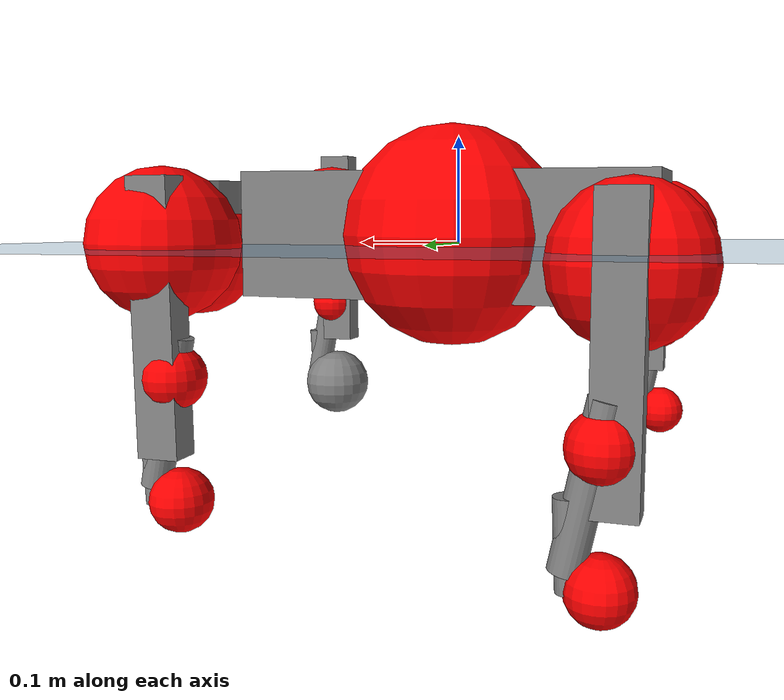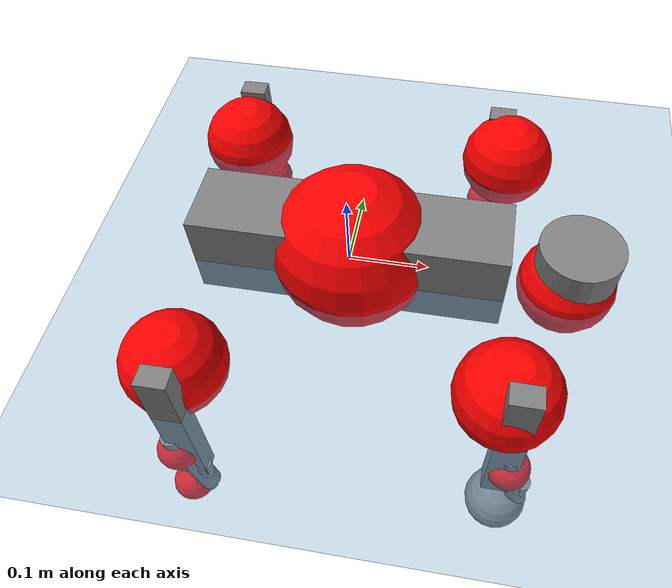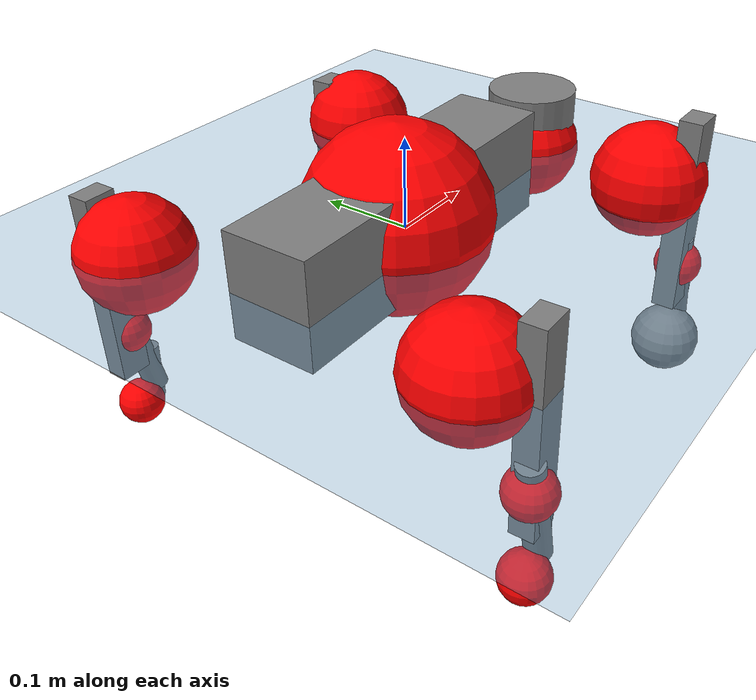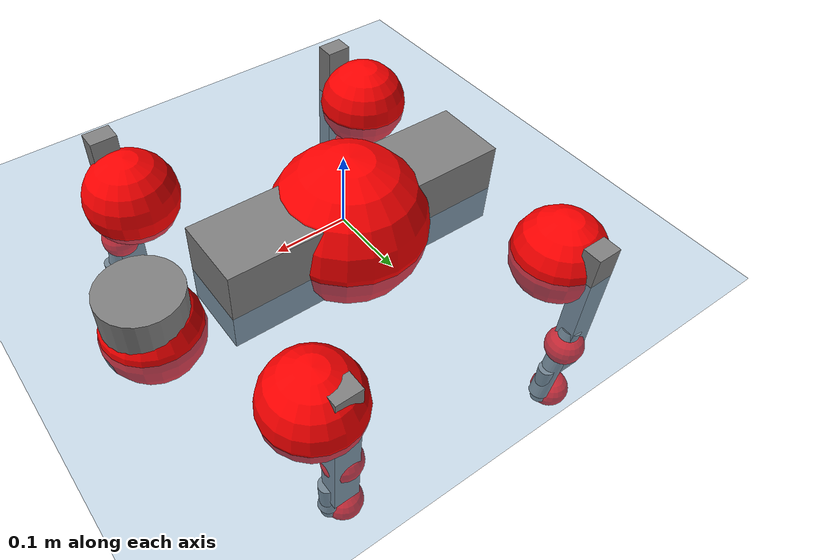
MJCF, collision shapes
<mujoco model="go2">
  <compiler angle="radian" assetdir="assets" balanceinertia="true" inertiafromgeom="false"/>

  <option timestep="0.005" density="1.2" viscosity="2e-05"/>

  <size nkey="1"/>

  <visual>
    <quality shadowsize="8192"/>
    <map shadowclip="0.5"/>
  </visual>

  <default>
    <default class="/">
      <geom contype="0" conaffinity="0" group="1" solref="-1000 -80"/>
      <site size="0.01 0.005 0.005" group="5"/>
      <general forcelimited="true" biastype="affine" gainprm="20" biasprm="0 -20 -0.5"/>
      <default class="go2">
        <joint armature="0.01" damping="0.01" frictionloss="0.2"/>
        <geom condim="1" margin="0.001"/>
        <default class="visual">
          <geom type="mesh" group="2"/>
        </default>
        <default class="collision">
          <geom group="3"/>
          <default class="foot">
            <geom size="0.022 0 0" condim="6" priority="1" friction="0.8 0.02 0.01" solimp="0.015 1 0.022"/>
          </default>
        </default>
        <default class="reward_collision_sphere">
          <geom group="5" rgba="1 0 0 1"/>
        </default>
      </default>
    </default>
  </default>

  <asset>
    <texture type="skybox" colorspace="auto" name="//unnamed_texture_0" builtin="gradient" rgb1="0.95 0.95 0.95" rgb2="0.95 0.95 0.95" width="100" height="600"/>
    <texture type="2d" colorspace="auto" name="texplane" builtin="checker" rgb1="0.345 0.575 0.748" rgb2="0.345 0.575 0.748" markrgb="1 1 1" width="512" height="512"/>
    <material name="MatPlane" class="/" texture="texplane" texuniform="true" texrepeat="2 2" specular="0.9"/>
    <material name="metal" class="/" rgba="0.9 0.95 0.95 1"/>
    <material name="black" class="/" rgba="0 0 0 1"/>
    <material name="white" class="/"/>
    <material name="gray" class="/" rgba="0.671705 0.692426 0.77427 1"/>
    <mesh name="base_0" class="/" file="base_0.obj"/>
    <mesh name="base_1" class="/" file="base_1.obj"/>
    <mesh name="base_2" class="/" file="base_2.obj"/>
    <mesh name="base_3" class="/" file="base_3.obj"/>
    <mesh name="base_4" class="/" file="base_4.obj"/>
    <mesh name="hip_0" class="/" file="hip_0.obj"/>
    <mesh name="hip_1" class="/" file="hip_1.obj"/>
    <mesh name="thigh_0" class="/" file="thigh_0.obj"/>
    <mesh name="thigh_1" class="/" file="thigh_1.obj"/>
    <mesh name="thigh_mirror_0" class="/" file="thigh_mirror_0.obj"/>
    <mesh name="thigh_mirror_1" class="/" file="thigh_mirror_1.obj"/>
    <mesh name="calf_0" class="/" file="calf_0.obj"/>
    <mesh name="calf_1" class="/" file="calf_1.obj"/>
    <mesh name="calf_mirror_0" class="/" file="calf_mirror_0.obj"/>
    <mesh name="calf_mirror_1" class="/" file="calf_mirror_1.obj"/>
    <mesh name="foot" class="/" file="foot.obj"/>
  </asset>

  <worldbody>
    <geom name="floor" class="/" size="100 100 0.125" type="plane" group="0" material="MatPlane"/>
    <light name="toplight_shadow" class="/" pos="0 0 5" dir="0.0990148 0.0990148 -0.990148" type="directional" ambient="0.04 0.04 0.04" diffuse="0.55 0.55 0.55" specular="0.12 0.12 0.12"/>
    <light name="toplight_fill" class="/" pos="0 0 5" dir="0.0990148 0.0990148 -0.990148" type="directional" castshadow="false" ambient="0.04 0.04 0.04" diffuse="0.3 0.3 0.3" specular="0.08 0.08 0.08"/>
    <body name="trunk" childclass="go2" pos="0.00246074 0.0125874 0.00805895" quat="0.99998 -0.00547547 -0.00302138 -0.000943452">
      <inertial pos="0.0318691 0.0175468 -0.0155045" quat="0.0525928 0.708603 -0.0176148 0.703425" mass="7.90379" diaginertia="0.142526 1.58697 0.000561475"/>
      <joint name="//unnamed_joint_0" type="free" armature="0" damping="0" frictionloss="0"/>
      <geom name="//unnamed_geom_1" class="visual" material="black" mesh="base_0"/>
      <geom name="//unnamed_geom_2" class="visual" material="black" mesh="base_1"/>
      <geom name="//unnamed_geom_3" class="visual" material="black" mesh="base_2"/>
      <geom name="//unnamed_geom_4" class="visual" material="white" mesh="base_3"/>
      <geom name="//unnamed_geom_5" class="visual" material="gray" mesh="base_4"/>
      <geom name="trunk_1" class="collision" size="0.196271 0.0487807 0.0594759" type="box"/>
      <geom name="trunk_2" class="collision" size="0.0521719 0.0469547" pos="0.278991 0 0.00470655" type="cylinder"/>
      <geom name="trunk_3" class="collision" size="0.0490416" pos="0.286822 0 -0.0282393"/>
      <geom name="//unnamed_geom_9" class="reward_collision_sphere" size="0.104344"/>
      <geom name="//unnamed_geom_10" class="reward_collision_sphere" size="0.0626062" pos="0.274096 0 -0.0211795"/>
      <site name="imu" pos="-0.0017281 -0.0188037 0.00121668" size="0.0104344"/>
      <camera name="track" pos="0 -3.36148 0" quat="0.707107 0.707107 0 0" mode="trackcom"/>
      <camera name="ego_camera" pos="0.305421 0 0.0211795" quat="-0.5 -0.5 0.5 0.5"/>
      <body name="FL_hip" pos="0.184922 0.0770904 -0.00429202" quat="0.999999 0.00159697 -0.000376643 0.00043906">
        <inertial pos="-0.00499765 0.0180493 -0.00214075" quat="0.540634 0.439459 0.549945 0.460599" mass="0.681978" diaginertia="0.000765787 0.00826553 1.06283e-05"/>
        <joint name="FL_hip_joint" pos="0 0 0" axis="0.998618 -0.0522577 0.00550032" range="-0.829963 1.16447" armature="0.0131853" damping="0" frictionloss="0.230118"/>
        <geom name="//unnamed_geom_11" class="visual" material="metal" mesh="hip_0"/>
        <geom name="//unnamed_geom_12" class="visual" material="gray" mesh="hip_1"/>
        <geom name="//unnamed_geom_13" class="collision" size="0.0479981 0.0208687" pos="0 0.134459 0" quat="0.707107 0.707107 0 0" type="cylinder"/>
        <geom name="//unnamed_geom_14" class="reward_collision_sphere" size="0.0626062" pos="0 0.117652 0"/>
        <body name="FL_thigh" pos="-0.0146106 0.149641 -0.00764775" quat="0.99996 -0.00615054 0.00535098 0.00379804">
          <inertial pos="-0.00108105 -0.0555009 -0.00945202" quat="0.812407 0.0652784 -0.0485549 0.577388" mass="1.10182" diaginertia="0.00623216 0.0597079 1.98065e-05"/>
          <joint name="FL_thigh_joint" pos="0 0 0" axis="0.0647624 0.997901 -0.000394153" range="-1.31478 3.8217" armature="0.000939981" damping="0" frictionloss="0.32574"/>
          <geom name="//unnamed_geom_15" class="visual" material="metal" mesh="thigh_0"/>
          <geom name="//unnamed_geom_16" class="visual" material="gray" mesh="thigh_1"/>
          <geom name="//unnamed_geom_17" class="collision" size="0.111126 0.0127821 0.0177384" pos="0 0 -0.0501248" quat="0.707107 0 0.707107 0" type="box"/>
          <body name="FL_calf" pos="-0.00643465 -0.00647809 -0.0981815" quat="0.999998 8.43942e-05 0.000470443 0.00194744">
            <inertial pos="0.0219268 0.0110274 -0.0521378" quat="0.698898 0.0199268 0.0317088 0.71424" mass="0.282117" diaginertia="0.00153015 0.0179377 1.49518e-06"/>
            <joint name="FL_calf_joint" pos="0 0 0" axis="-0.0255007 0.999658 -0.00571656" range="-3.08461 -1.12328" armature="0.0167886" damping="0.0878254" frictionloss="0.121953"/>
            <geom name="//unnamed_geom_18" class="visual" material="gray" mesh="calf_0"/>
            <geom name="//unnamed_geom_19" class="visual" material="black" mesh="calf_1"/>
            <geom name="FL_calf0" class="collision" size="0.0125212 0.0626062" pos="0.00783132 0 -0.0282393" quat="0.994493 0 -0.104807 0" type="cylinder"/>
            <geom name="//unnamed_geom_21" class="collision" size="0.0114778 0.0339117" pos="0.0195783 0 -0.069657" quat="0.999688 0 0.0249974 0" type="cylinder"/>
            <geom name="//unnamed_geom_22" class="visual" pos="0 0 -0.10025" quat="1 0 0 0" material="black" mesh="foot"/>
            <geom name="FL_foot" class="foot" size="0.0239474" pos="-0.00195783 0 -0.10025"/>
            <geom name="//unnamed_geom_24" class="reward_collision_sphere" size="0.0260859"/>
            <geom name="//unnamed_geom_25" class="reward_collision_sphere" size="0.0260859" pos="-0.00195783 0 -0.10025"/>
            <site name="FL_foot" class="foot" pos="-0.00195783 0 -0.10025" size="0.0104344"/>
          </body>
        </body>
      </body>
      <body name="FR_hip" pos="0.20719 -0.0681679 0.0106454" quat="0.999994 0.000543061 0.00331184 0.000332022">
        <inertial pos="0.000128082 -0.0124386 0.00969127" quat="0.562706 0.462831 0.478409 0.490178" mass="0.828841" diaginertia="0.000894432 0.00799343 9.56816e-06"/>
        <joint name="FR_hip_joint" pos="0 0 0" axis="0.998421 -0.0451374 -0.0334445" stiffness="0.09175" range="-1.13899 0.742069" armature="0.0150785" damping="0" frictionloss="0.128623"/>
        <geom name="//unnamed_geom_26" class="visual" pos="0 1.05418e-08 4.52159e-07" quat="4.63268e-05 1 0 0" material="metal" mesh="hip_0"/>
        <geom name="//unnamed_geom_27" class="visual" pos="0 1.70895e-08 -1.11836e-06" quat="4.63268e-05 1 0 0" material="gray" mesh="hip_1"/>
        <geom name="//unnamed_geom_28" class="collision" size="0.0479981 0.0208687" pos="0 -0.134459 0" quat="0.707107 0.707107 0 0" type="cylinder"/>
        <geom name="//unnamed_geom_29" class="reward_collision_sphere" size="0.0626062" pos="0 -0.117652 0"/>
        <body name="FR_thigh" pos="0.00937075 -0.157631 0.0157077" quat="1 -3.00909e-05 1.12551e-05 -6.16222e-05">
          <inertial pos="-0.0141942 0.0497316 -0.0318817" quat="0.559598 -0.0374994 0.0458956 0.826643" mass="1.19593" diaginertia="0.00626655 0.0786968 2.04e-05"/>
          <joint name="FR_thigh_joint" pos="0 0 0" axis="-0.0170564 -0.999778 0.0123567" range="-3.43108 1.39909" armature="0.017962" damping="0" frictionloss="0.333684"/>
          <geom name="//unnamed_geom_30" class="visual" material="metal" mesh="thigh_mirror_0"/>
          <geom name="//unnamed_geom_31" class="visual" material="gray" mesh="thigh_mirror_1"/>
          <geom name="//unnamed_geom_32" class="collision" size="0.111126 0.0127821 0.0177384" pos="0 0 -0.0501248" quat="0.707107 0 0.707107 0" type="box"/>
          <body name="FR_calf" pos="0.0085852 -0.000985736 -0.116166" quat="0.999994 0.00164117 0.00262776 0.00119501">
            <inertial pos="0.0181827 -0.0113741 -0.0705528" quat="0.726939 0.0155531 -0.0251266 0.686066" mass="0.213932" diaginertia="0.00115838 0.0127462 1.09303e-06"/>
            <joint name="FR_calf_joint" pos="0 0 0" axis="-0.00568434 -0.999748 -0.0217275" range="0.669232 2.57336" armature="0.013071" damping="0.0970816" frictionloss="0.300901"/>
            <geom name="//unnamed_geom_33" class="visual" material="gray" mesh="calf_mirror_0"/>
            <geom name="//unnamed_geom_34" class="visual" material="black" mesh="calf_mirror_1"/>
            <geom name="FR_calf0" class="collision" size="0.0135647 0.0626062" pos="0.00978915 0 -0.0282393" quat="0.995004 0 -0.0998334 0" type="cylinder"/>
            <geom name="//unnamed_geom_36" class="collision" size="0.0114778 0.0339117" pos="0.0195783 0 -0.069657" quat="0.999688 0 0.0249974 0" type="cylinder"/>
            <geom name="//unnamed_geom_37" class="visual" pos="0 0 -0.10025" quat="1 0 0 0" material="black" mesh="foot"/>
            <geom name="FR_foot" class="foot" size="0.0383335" pos="-0.00195783 0 -0.10025"/>
            <geom name="//unnamed_geom_39" class="reward_collision_sphere" size="0.0260859"/>
            <geom name="//unnamed_geom_40" class="reward_collision_sphere" size="0.0260859" pos="-0.00195783 0 -0.10025"/>
            <site name="FR_foot" class="foot" pos="-0.00195783 0 -0.10025" size="0.0104344"/>
          </body>
        </body>
      </body>
      <body name="RL_hip" pos="-0.190784 0.0676677 -0.0136922" quat="0.999999 -0.000298873 -0.000989575 -0.00120662">
        <inertial pos="-0.00104434 0.00991413 -0.0119066" quat="0.517714 0.482756 0.477842 0.520179" mass="1.05382" diaginertia="0.000955556 0.0100744 1.06012e-05"/>
        <joint name="RL_hip_joint" pos="0 0 0" axis="-0.998888 -0.000178023 0.04714" range="-1.34903 1.21996" armature="0.0139881" damping="0.0212751" frictionloss="0.0633687"/>
        <geom name="//unnamed_geom_41" class="visual" pos="-4.42775e-09 0 -8.67941e-07" quat="4.63268e-05 0 1 0" material="metal" mesh="hip_0"/>
        <geom name="//unnamed_geom_42" class="visual" pos="-7.17791e-09 0 -7.6974e-07" quat="4.63268e-05 0 1 0" material="gray" mesh="hip_1"/>
        <geom name="//unnamed_geom_43" class="collision" size="0.0479981 0.0208687" pos="0 0.134459 0" quat="0.707107 0.707107 0 0" type="cylinder"/>
        <geom name="//unnamed_geom_44" class="reward_collision_sphere" size="0.0626062" pos="0 0.117652 0"/>
        <body name="RL_thigh" pos="-0.000757396 0.170914 -0.00719975" quat="0.999965 -0.00343297 -0.000941926 0.00751841">
          <inertial pos="-0.0068109 -0.0562476 -0.0238906" quat="0.854267 0.0608242 -0.0653384 0.512113" mass="1.60495" diaginertia="0.00613012 0.0676773 1.64099e-05"/>
          <joint name="RL_thigh_joint" pos="0 0 0" axis="0.0751716 0.995979 0.0487271" stiffness="0.0230021" range="-0.423062 4.60311" armature="0.00400362" damping="0" frictionloss="0.326112"/>
          <geom name="//unnamed_geom_45" class="visual" material="metal" mesh="thigh_0"/>
          <geom name="//unnamed_geom_46" class="visual" material="gray" mesh="thigh_1"/>
          <geom name="//unnamed_geom_47" class="collision" size="0.111126 0.0127821 0.0177384" pos="0 0 -0.0501248" quat="0.707107 0 0.707107 0" type="box"/>
          <body name="RL_calf" pos="0.00975088 0.00202517 -0.113288" quat="0.999985 -0.00118966 -0.00379754 -0.00376152">
            <inertial pos="0.00401074 -0.0158088 -0.0622322" quat="0.706537 -0.0142978 -0.0148552 0.707376" mass="0.279674" diaginertia="0.0014473 0.0212649 1.33815e-06"/>
            <joint name="RL_calf_joint" pos="0 0 0" axis="-0.00185941 0.999984 -0.00532194" range="-3.07546 -0.874189" armature="0.00106822" damping="0" frictionloss="0.336517"/>
            <geom name="//unnamed_geom_48" class="visual" material="gray" mesh="calf_0"/>
            <geom name="//unnamed_geom_49" class="visual" material="black" mesh="calf_1"/>
            <geom name="RL_calf0" class="collision" size="0.0135647 0.0626062" pos="0.00978915 0 -0.0282393" quat="0.995004 0 -0.0998334 0" type="cylinder"/>
            <geom name="//unnamed_geom_51" class="collision" size="0.0114778 0.0339117" pos="0.0195783 0 -0.069657" quat="0.999688 0 0.0249974 0" type="cylinder"/>
            <geom name="//unnamed_geom_52" class="visual" pos="0 0 -0.10025" quat="1 0 0 0" material="black" mesh="foot"/>
            <geom name="RL_foot" class="foot" size="0.0218465" pos="-0.00195783 0 -0.10025"/>
            <geom name="//unnamed_geom_54" class="reward_collision_sphere" size="0.0260859"/>
            <geom name="//unnamed_geom_55" class="reward_collision_sphere" size="0.0260859" pos="-0.00195783 0 -0.10025"/>
            <site name="RL_foot" class="foot" pos="-0.00195783 0 -0.10025" size="0.0104344"/>
          </body>
        </body>
      </body>
      <body name="RR_hip" pos="-0.171723 -0.0810891 -0.00719064" quat="0.999957 -0.00553716 0.00589442 0.00451907">
        <inertial pos="0.0015031 0.00475112 0.00510523" quat="0.48992 0.499132 0.501194 0.509558" mass="0.87877" diaginertia="0.00089796 0.00813774 9.60986e-06"/>
        <joint name="RR_hip_joint" pos="0 0 0" axis="-0.999787 -0.0115595 -0.0170845" range="-0.919037 0.792277" armature="0.00178886" damping="0.0133867" frictionloss="0.0846541"/>
        <geom name="//unnamed_geom_56" class="visual" pos="4.45205e-09 1.05418e-08 -1.3201e-06" quat="2.14617e-09 4.63268e-05 4.63268e-05 -1" material="metal" mesh="hip_0"/>
        <geom name="//unnamed_geom_57" class="visual" pos="7.11781e-09 1.70895e-08 3.48621e-07" quat="2.14617e-09 4.63268e-05 4.63268e-05 -1" material="gray" mesh="hip_1"/>
        <geom name="//unnamed_geom_58" class="collision" size="0.0479981 0.0208687" pos="0 -0.134459 0" quat="0.707107 0.707107 0 0" type="cylinder"/>
        <geom name="//unnamed_geom_59" class="reward_collision_sphere" size="0.0626062" pos="0 -0.117652 0"/>
        <body name="RR_thigh" pos="0.0128799 -0.174532 0.00834363" quat="0.999989 -0.00222999 -0.00388135 0.00131711">
          <inertial pos="-0.00541208 0.0511734 -0.011105" quat="0.528218 -0.0236905 0.0861377 0.844396" mass="1.07781" diaginertia="0.00518403 0.0785974 2.14328e-05"/>
          <joint name="RR_thigh_joint" pos="0 0 0" axis="-0.000261195 -1 0.000322194" range="-4.60937 0.159467" armature="0.0197068" damping="0" frictionloss="0.251235"/>
          <geom name="//unnamed_geom_60" class="visual" material="metal" mesh="thigh_mirror_0"/>
          <geom name="//unnamed_geom_61" class="visual" material="gray" mesh="thigh_mirror_1"/>
          <geom name="//unnamed_geom_62" class="collision" size="0.111126 0.0127821 0.0177384" pos="0 0 -0.0501248" quat="0.707107 0 0.707107 0" type="box"/>
          <body name="RR_calf" pos="-0.011487 -0.00330034 -0.109974" quat="0.999997 -0.00222818 0.000532926 0.000246674">
            <inertial pos="0.0175742 -0.00428259 -0.0658119" quat="0.704206 -0.00803824 0.00255169 0.709946" mass="0.228609" diaginertia="0.00119714 0.0168964 1.28346e-06"/>
            <joint name="RR_calf_joint" pos="0 0 0" axis="0.0346554 -0.997588 -0.060151" range="0.523246 2.51586" armature="0.013837" damping="0.0246306" frictionloss="0.0925441"/>
            <geom name="//unnamed_geom_63" class="visual" material="gray" mesh="calf_mirror_0"/>
            <geom name="//unnamed_geom_64" class="visual" material="black" mesh="calf_mirror_1"/>
            <geom name="RR_calf0" class="collision" size="0.0135647 0.0626062" pos="0.00978915 0 -0.0282393" quat="0.995004 0 -0.0998334 0" type="cylinder"/>
            <geom name="//unnamed_geom_66" class="collision" size="0.0114778 0.0339117" pos="0.0195783 0 -0.069657" quat="0.999688 0 0.0249974 0" type="cylinder"/>
            <geom name="//unnamed_geom_67" class="visual" pos="0 0 -0.10025" quat="1 0 0 0" material="black" mesh="foot"/>
            <geom name="RR_foot" class="foot" size="0.00717916" pos="-0.00195783 0 -0.10025"/>
            <geom name="//unnamed_geom_69" class="reward_collision_sphere" size="0.0260859"/>
            <geom name="//unnamed_geom_70" class="reward_collision_sphere" size="0.0260859" pos="-0.00195783 0 -0.10025"/>
            <site name="RR_foot" class="foot" pos="-0.00195783 0 -0.10025" size="0.0104344"/>
          </body>
        </body>
      </body>
    </body>
  </worldbody>

  <contact>
    <pair class="/" geom1="floor" geom2="FL_foot" name="//unnamed_contact_0"/>
    <pair class="/" geom1="floor" geom2="FR_foot" name="//unnamed_contact_1"/>
    <pair class="/" geom1="floor" geom2="RL_foot" name="//unnamed_contact_2"/>
    <pair class="/" geom1="floor" geom2="RR_foot" name="//unnamed_contact_3"/>
  </contact>

  <actuator>
    <general name="FL_hip" class="/" joint="FL_hip_joint" forcerange="-15.3634 15.3634" gainprm="21.0817" biasprm="0 -21.0817 -0.470224"/>
    <general name="FL_thigh" class="/" joint="FL_thigh_joint" forcerange="-26.1039 26.1039" gainprm="21.0817" biasprm="0 -21.0817 -0.470224"/>
    <general name="FL_calf" class="/" joint="FL_calf_joint" forcerange="-41.2008 41.2008" gainprm="21.0817" biasprm="0 -21.0817 -0.470224"/>
    <general name="FR_hip" class="/" joint="FR_hip_joint" forcerange="-34.6209 34.6209" gainprm="21.0817" biasprm="0 -21.0817 -0.470224"/>
    <general name="FR_thigh" class="/" joint="FR_thigh_joint" forcerange="-27.7021 27.7021" gainprm="21.0817" biasprm="0 -21.0817 -0.470224"/>
    <general name="FR_calf" class="/" joint="FR_calf_joint" forcerange="-71.3136 71.3136" gainprm="21.0817" biasprm="0 -21.0817 -0.470224"/>
    <general name="RL_hip" class="/" joint="RL_hip_joint" forcerange="-32.4214 32.4214" gainprm="21.0817" biasprm="0 -21.0817 -0.470224"/>
    <general name="RL_thigh" class="/" joint="RL_thigh_joint" forcerange="-27.5792 27.5792" gainprm="21.0817" biasprm="0 -21.0817 -0.470224"/>
    <general name="RL_calf" class="/" joint="RL_calf_joint" forcerange="-34.0794 34.0794" gainprm="21.0817" biasprm="0 -21.0817 -0.470224"/>
    <general name="RR_hip" class="/" joint="RR_hip_joint" forcerange="-34.2909 34.2909" gainprm="21.0817" biasprm="0 -21.0817 -0.470224"/>
    <general name="RR_thigh" class="/" joint="RR_thigh_joint" forcerange="-16.4303 16.4303" gainprm="21.0817" biasprm="0 -21.0817 -0.470224"/>
    <general name="RR_calf" class="/" joint="RR_calf_joint" forcerange="-18.9763 18.9763" gainprm="21.0817" biasprm="0 -21.0817 -0.470224"/>
  </actuator>

  <sensor>
    <gyro site="imu" name="imu_angular_velocity"/>
    <velocimeter site="imu" name="imu_linear_velocity"/>
    <framelinvel objtype="site" objname="FL_foot" name="FL_foot_global_linear_velocity"/>
    <framelinvel objtype="site" objname="FR_foot" name="FR_foot_global_linear_velocity"/>
    <framelinvel objtype="site" objname="RL_foot" name="RL_foot_global_linear_velocity"/>
    <framelinvel objtype="site" objname="RR_foot" name="RR_foot_global_linear_velocity"/>
  </sensor>

  <keyframe>
    <key name="home" qpos="0 0 0.325 1 0 0 0 0.1 0.8 -1.5 -0.1 -0.8 1.5 -0.1 0.8 -1.5 0.1 -0.8 1.5"/>
  </keyframe>
</mujoco>
